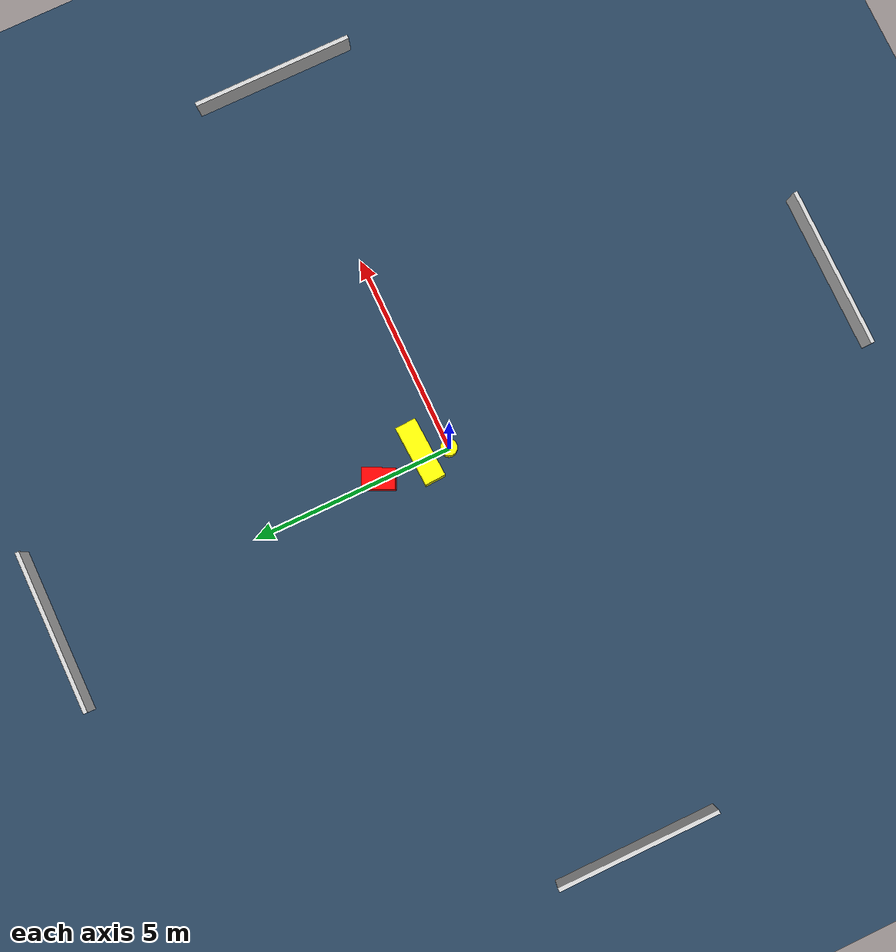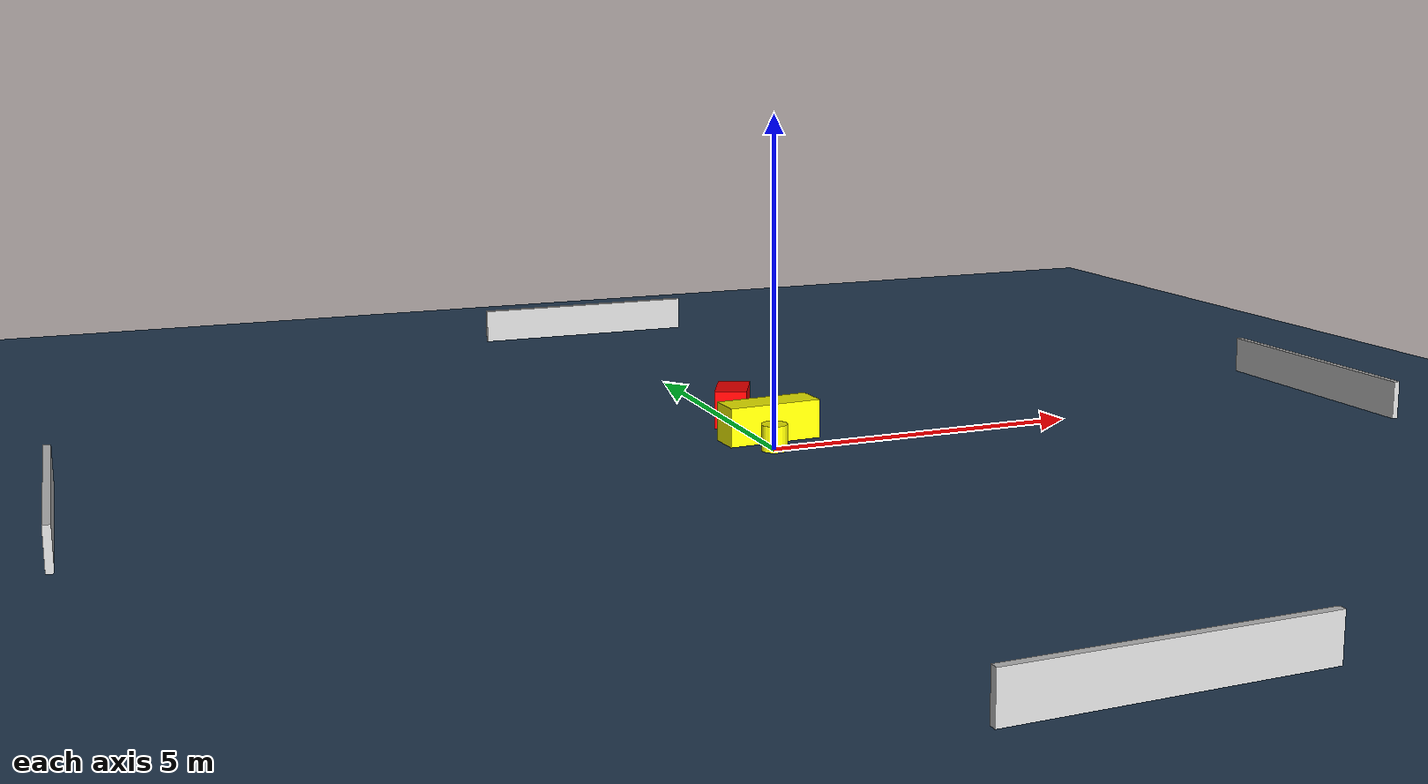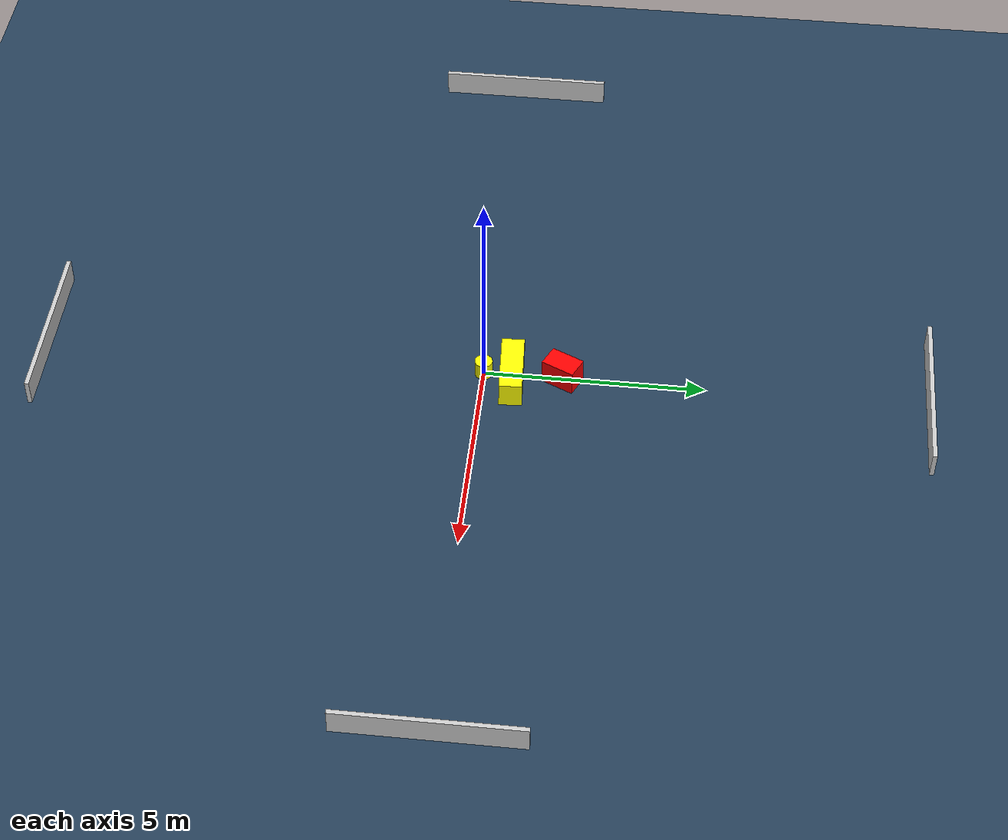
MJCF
<?xml version="1.0" ?>
<mujoco model="generated_environment">
  <option timestep="0.01" integrator="RK4" cone="elliptic"/>
  <default>
    <geom density="1"/>
  </default>
  <asset>
    <texture builtin="gradient" height="3072" name="skybox" rgb1="0.3 0.5 0.7" rgb2="0 0 0" type="skybox" width="512"/>
    <texture builtin="checker" height="300" name="groundplane" rgb1="0.2 0.3 0.4" rgb2="0.1 0.2 0.3" type="2d" width="300"/>
    <material name="groundplane" reflectance="0.2" texrepeat="5 5" texture="groundplane"/>
  </asset>
  <worldbody>
    <light dir="0 0 -1" directional="true" pos="0 0 1.5"/>
    <geom condim="3" friction="0.5 0.005 0.001" material="groundplane" name="floor" pos="0 0 0" size="0 0 0.05" type="plane"/>
    <body name="walls">
      <geom name="wall_1" condim="4" pos="-10.0 0.0 0.3" rgba="0.800000011920929 0.800000011920929 0.800000011920929 1.0" size="0.05 2.0 0.3" type="box"/>
      <geom name="wall_2" condim="4" pos="10.0 0.0 0.3" rgba="0.800000011920929 0.800000011920929 0.800000011920929 1.0" size="0.05 2.0 0.3" type="box"/>
      <geom name="wall_3" condim="4" pos="0.0 -10.0 0.3" rgba="0.800000011920929 0.800000011920929 0.800000011920929 1.0" size="2.0 0.05 0.3" type="box"/>
      <geom name="wall_4" condim="4" pos="0.0 10.0 0.3" rgba="0.800000011920929 0.800000011920929 0.800000011920929 1.0" size="2.0 0.05 0.3" type="box"/>
    </body>
    <body name="robot">
      <joint name="joint_x" type="slide" pos="0 0 0" axis="1 0 0"/>
      <joint name="joint_y" type="slide" pos="0 0 0" axis="0 1 0"/>
      <geom name="robot" type="cylinder" pos="0.0 0.0 0.2" size="0.2 0.2 0.0" mass="5.0" friction="1.0 0.005 0.0001" condim="4" rgba="1.0 1.0 0.0 1.0"/>
    </body>
    <body name="obstacle_1_movable">
      <geom name="obstacle_1_movable" condim="4" pos="0.17481434885091535 0.6529887894340626 0.3" euler="0 0 93.09731624834302" friction="0.0 0.005 0.001" rgba="1.0 1.0 0.0 1.0" size="0.2594552844511358 0.7449794766350708 0.3" type="box" mass="0.1"/>
      <joint type="free"/>
    </body>
    <body name="obstacle_2_static">
      <geom name="obstacle_2_static" condim="4" pos="0.022845501060679937 1.7875831088272327 0.3" euler="0 0 334.5716634216631" friction="0.0 0.005 0.001" rgba="1.0 0.0 0.0 1.0" size="0.25291588010321747 0.3919083099324565 0.3" type="box"/>
    </body>
  </worldbody>
  <actuator>
    <motor name="actuator_x" joint="joint_x" gear="1" ctrlrange="-1 1"/>
    <motor name="actuator_y" joint="joint_y" gear="1" ctrlrange="-1 1"/>
  </actuator>
</mujoco>
